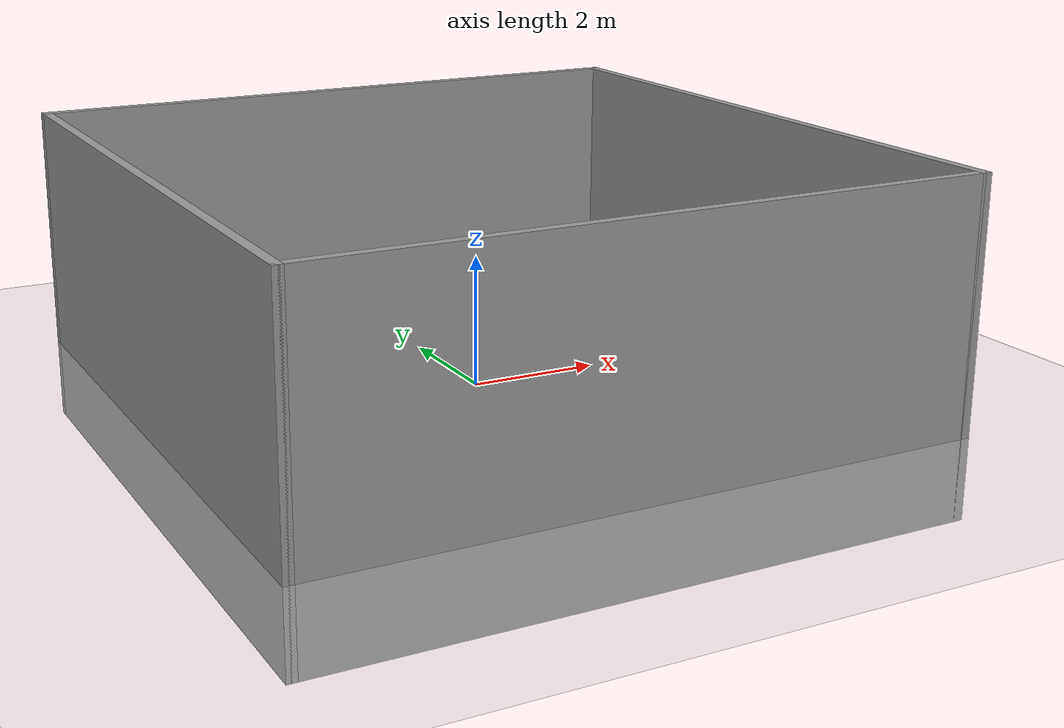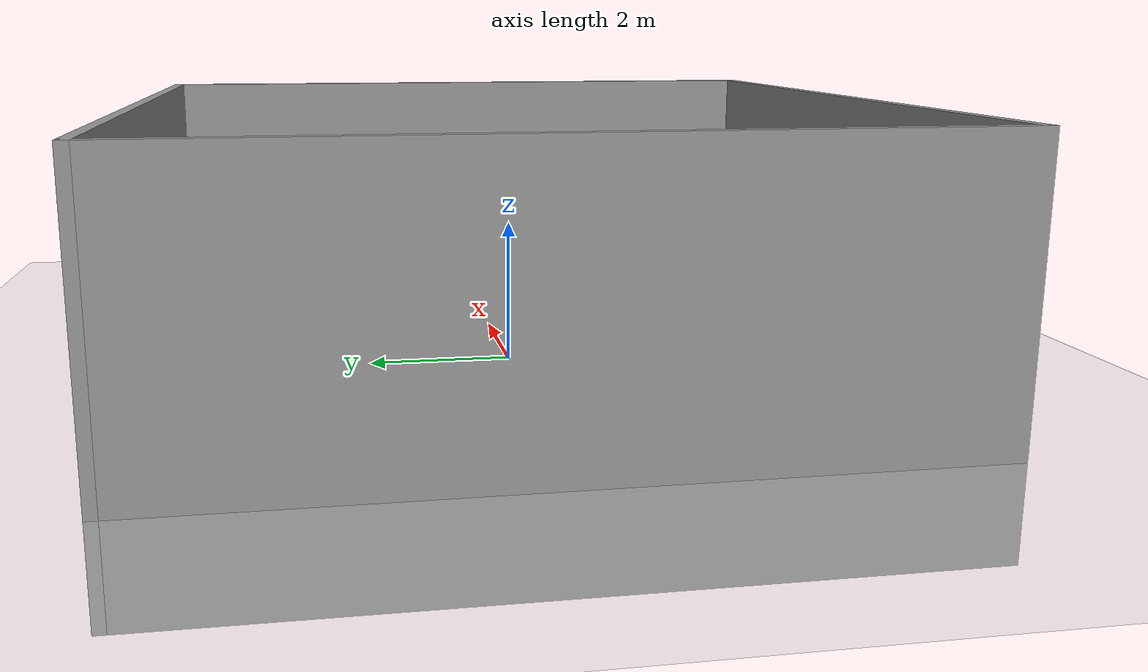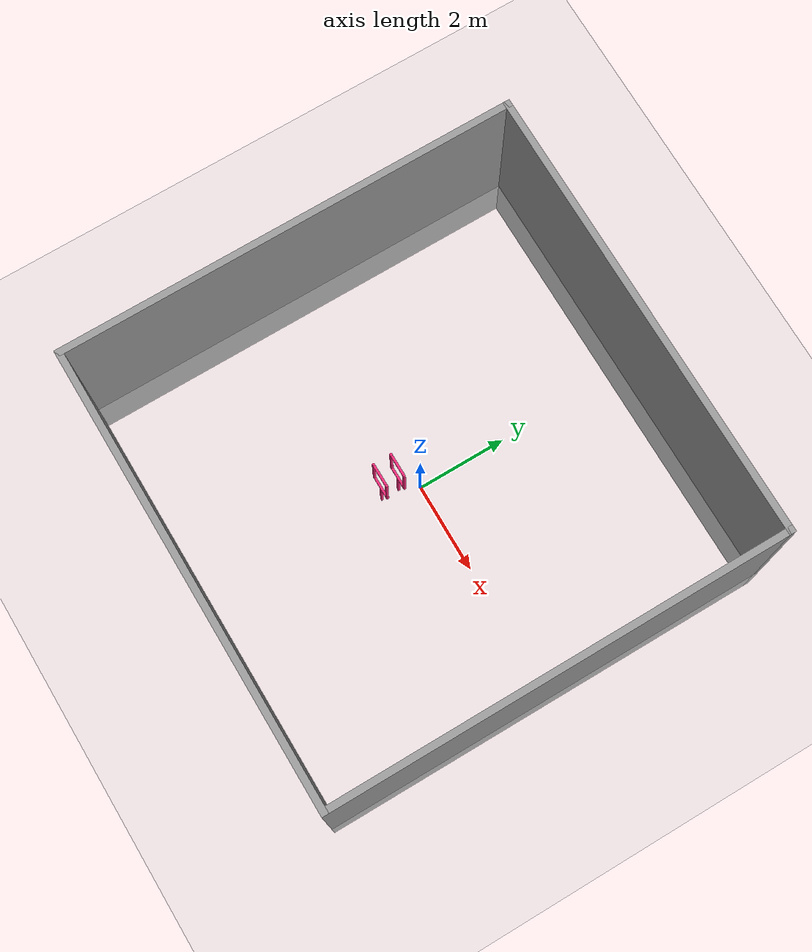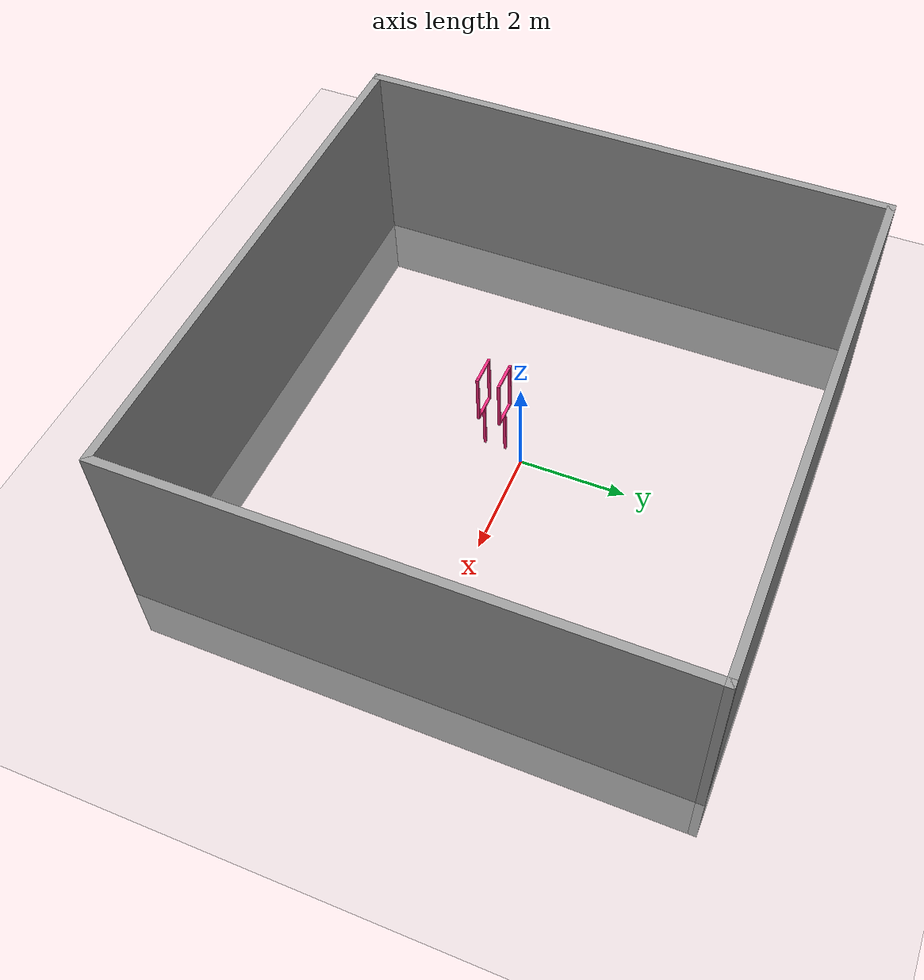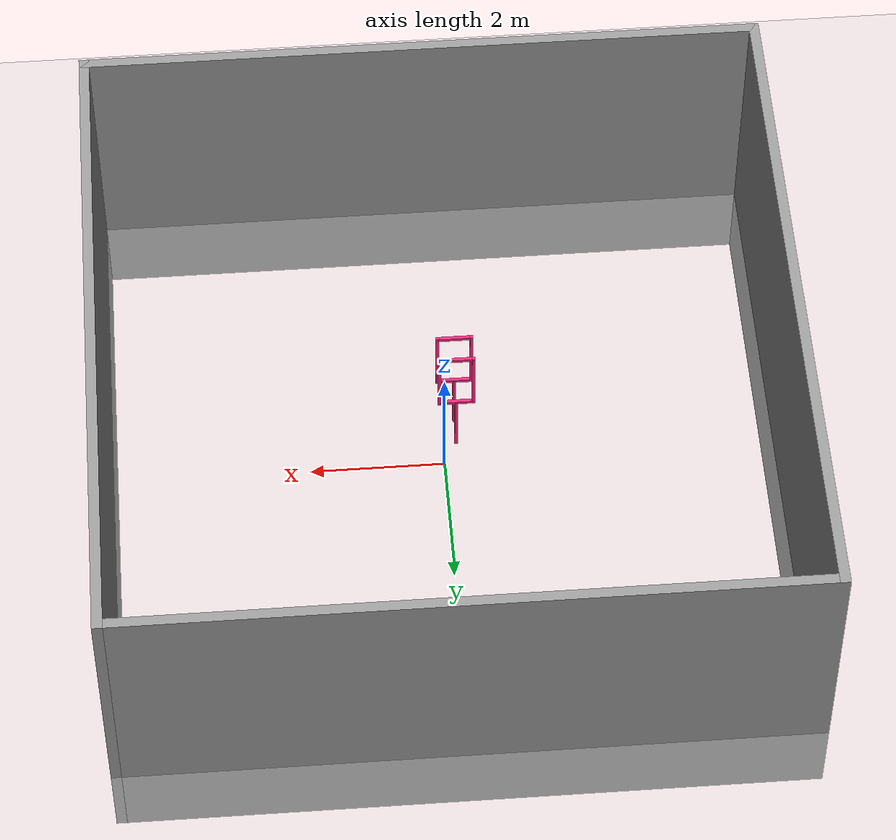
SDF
<sdf version="1.7">
 <world name="default">
  <model name="ground_plane">
   <static>1</static>
   <link name="link">
    <collision name="collision">
     <geometry><plane><normal>0 0 1</normal><size>100 100</size></plane></geometry>
     <surface><friction><ode><mu>100</mu><mu2>50</mu2></ode></friction></surface>
    </collision>
    <visual name="visual">
     <cast_shadows>0</cast_shadows>
     <geometry><plane><normal>0 0 1</normal><size>100 100</size></plane></geometry>
     <material>
      <script><uri>file://media/materials/scripts/gazebo.material</uri><name>Gazebo/Grey</name></script>
     </material>
    </visual>
   </link>
  </model>
  <model name="Indoor_emptyroom">
   <link name="Wall_31">
    <collision name="Wall_31_Collision">
     <geometry><box><size>10.15 0.15 5</size></box></geometry>
     <pose>0 0 1.25 0 -0 0</pose>
    </collision>
    <visual name="Wall_31_Visual">
     <pose>0 0 1.25 0 -0 0</pose>
     <geometry><box><size>10.15 0.15 5</size></box></geometry>
     <material>
      <script><uri>file://media/materials/scripts/gazebo.material</uri><name>Gazebo/Grey</name></script>
      <ambient>1 1 1 1</ambient>
     </material>
     <meta><layer>0</layer></meta>
    </visual>
    <pose>0 -5 0 0 -0 0</pose>
   </link>
   <link name="Wall_32">
    <collision name="Wall_32_Collision">
     <geometry><box><size>10.15 0.15 5</size></box></geometry>
     <pose>0 0 1.25 0 -0 0</pose>
    </collision>
    <visual name="Wall_32_Visual">
     <pose>0 0 1.25 0 -0 0</pose>
     <geometry><box><size>10.15 0.15 5</size></box></geometry>
     <material>
      <script><uri>file://media/materials/scripts/gazebo.material</uri><name>Gazebo/Grey</name></script>
      <ambient>1 1 1 1</ambient>
     </material>
     <meta><layer>0</layer></meta>
    </visual>
    <pose>5 0 0 0 -0 1.5708</pose>
   </link>
   <link name="Wall_33">
    <collision name="Wall_33_Collision">
     <geometry><box><size>10.15 0.15 5</size></box></geometry>
     <pose>0 0 1.25 0 -0 0</pose>
    </collision>
    <visual name="Wall_33_Visual">
     <pose>0 0 1.25 0 -0 0</pose>
     <geometry><box><size>10.15 0.15 5</size></box></geometry>
     <material>
      <script><uri>file://media/materials/scripts/gazebo.material</uri><name>Gazebo/Grey</name></script>
      <ambient>1 1 1 1</ambient>
     </material>
     <meta><layer>0</layer></meta>
    </visual>
    <pose>0 5 0 0 -0 3.14159</pose>
   </link>
   <link name="Wall_34">
    <collision name="Wall_34_Collision">
     <geometry><box><size>10.15 0.15 5</size></box></geometry>
     <pose>0 0 1.25 0 -0 0</pose>
    </collision>
    <visual name="Wall_34_Visual">
     <pose>0 0 1.25 0 -0 0</pose>
     <geometry><box><size>10.15 0.15 5</size></box></geometry>
     <material>
      <script><uri>file://media/materials/scripts/gazebo.material</uri><name>Gazebo/Grey</name></script>
      <ambient>1 1 1 1</ambient>
     </material>
     <meta><layer>0</layer></meta>
    </visual>
    <pose>-5 0 0 0 -0 -1.5708</pose>
   </link>
   <static>1</static>
  </model>
  <model name="small_gate_12">
   <link name="rod">
    <pose>0 0 0.5 0 -0 0</pose>
    <inertial>
     <mass>1</mass>
     <inertia>
      <ixx>0.166667</ixx>
      <ixy>0</ixy>
      <ixz>0</ixz>
      <iyy>0.166667</iyy>
      <iyz>0</iyz>
      <izz>0.166667</izz>
     </inertia>
    </inertial>
    <visual name="visual">
     <geometry><box><size>0.05 0.05 1</size></box></geometry>
     <material>
      <shader type="vertex"><normal_map>__default__</normal_map></shader>
      <ambient>0.978 0.164 0.484 1</ambient>
      <diffuse>0.978 0.164 0.484 1</diffuse>
      <specular>0.01 0.01 0.01 1</specular>
      <emissive>0 0 0 1</emissive>
     </material>
    </visual>
    <collision name="collision">
     <geometry><box><size>0.05 0.05 1</size></box></geometry>
     <surface>
      <friction>
       <ode><mu>1</mu><mu2>1</mu2><fdir1>0 0 0</fdir1><slip1>0</slip1><slip2>0</slip2></ode>
       <torsional>
        <coefficient>1</coefficient>
        <patch_radius>0</patch_radius>
        <surface_radius>0</surface_radius>
        <use_patch_radius>1</use_patch_radius>
        <ode><slip>0</slip></ode>
       </torsional>
      </friction>
      <bounce><restitution_coefficient>0</restitution_coefficient><threshold>1e+06</threshold></bounce>
      <contact>
       <collide_without_contact>0</collide_without_contact>
       <collide_without_contact_bitmask>1</collide_without_contact_bitmask>
       <collide_bitmask>1</collide_bitmask>
       <ode>
        <soft_cfm>0</soft_cfm>
        <soft_erp>0.2</soft_erp>
        <kp>1e+13</kp>
        <kd>1</kd>
        <max_vel>0.01</max_vel>
        <min_depth>0</min_depth>
       </ode>
       <bullet>
        <split_impulse>1</split_impulse>
        <split_impulse_penetration_threshold>-0.01</split_impulse_penetration_threshold>
        <soft_cfm>0</soft_cfm>
        <soft_erp>0.2</soft_erp>
        <kp>1e+13</kp>
        <kd>1</kd>
       </bullet>
      </contact>
     </surface>
    </collision>
   </link>
   <link name="top_edge">
    <pose>0 0 2 0 -0 0</pose>
    <inertial>
     <mass>1</mass>
     <inertia>
      <ixx>0.166667</ixx>
      <ixy>0</ixy>
      <ixz>0</ixz>
      <iyy>0.166667</iyy>
      <iyz>0</iyz>
      <izz>0.166667</izz>
     </inertia>
    </inertial>
    <visual name="visual">
     <geometry><box><size>0.5 0.05 0.05</size></box></geometry>
     <material>
      <shader type="vertex"><normal_map>__default__</normal_map></shader>
      <ambient>0.978 0.164 0.484 1</ambient>
      <diffuse>0.978 0.164 0.484 1</diffuse>
      <specular>0.01 0.01 0.01 1</specular>
      <emissive>0 0 0 1</emissive>
     </material>
    </visual>
    <collision name="collision">
     <geometry><box><size>0.5 0.05 0.05</size></box></geometry>
     <surface>
      <friction>
       <ode><mu>1</mu><mu2>1</mu2><fdir1>0 0 0</fdir1><slip1>0</slip1><slip2>0</slip2></ode>
       <torsional>
        <coefficient>1</coefficient>
        <patch_radius>0</patch_radius>
        <surface_radius>0</surface_radius>
        <use_patch_radius>1</use_patch_radius>
        <ode><slip>0</slip></ode>
       </torsional>
      </friction>
      <bounce><restitution_coefficient>0</restitution_coefficient><threshold>1e+06</threshold></bounce>
      <contact>
       <collide_without_contact>0</collide_without_contact>
       <collide_without_contact_bitmask>1</collide_without_contact_bitmask>
       <collide_bitmask>1</collide_bitmask>
       <ode>
        <soft_cfm>0</soft_cfm>
        <soft_erp>0.2</soft_erp>
        <kp>1e+13</kp>
        <kd>1</kd>
        <max_vel>0.01</max_vel>
        <min_depth>0</min_depth>
       </ode>
       <bullet>
        <split_impulse>1</split_impulse>
        <split_impulse_penetration_threshold>-0.01</split_impulse_penetration_threshold>
        <soft_cfm>0</soft_cfm>
        <soft_erp>0.2</soft_erp>
        <kp>1e+13</kp>
        <kd>1</kd>
       </bullet>
      </contact>
     </surface>
    </collision>
   </link>
   <link name="bottom_edge">
    <pose>0 0 1 0 -0 0</pose>
    <inertial>
     <mass>1</mass>
     <inertia>
      <ixx>0.166667</ixx>
      <ixy>0</ixy>
      <ixz>0</ixz>
      <iyy>0.166667</iyy>
      <iyz>0</iyz>
      <izz>0.166667</izz>
     </inertia>
    </inertial>
    <visual name="visual">
     <geometry><box><size>0.5 0.05 0.05</size></box></geometry>
     <material>
      <shader type="vertex"><normal_map>__default__</normal_map></shader>
      <ambient>0.978 0.164 0.484 1</ambient>
      <diffuse>0.978 0.164 0.484 1</diffuse>
      <specular>0.01 0.01 0.01 1</specular>
      <emissive>0 0 0 1</emissive>
     </material>
    </visual>
    <collision name="collision">
     <geometry><box><size>0.5 0.05 0.05</size></box></geometry>
     <surface>
      <friction>
       <ode><mu>1</mu><mu2>1</mu2><fdir1>0 0 0</fdir1><slip1>0</slip1><slip2>0</slip2></ode>
       <torsional>
        <coefficient>1</coefficient>
        <patch_radius>0</patch_radius>
        <surface_radius>0</surface_radius>
        <use_patch_radius>1</use_patch_radius>
        <ode><slip>0</slip></ode>
       </torsional>
      </friction>
      <bounce><restitution_coefficient>0</restitution_coefficient><threshold>1e+06</threshold></bounce>
      <contact>
       <collide_without_contact>0</collide_without_contact>
       <collide_without_contact_bitmask>1</collide_without_contact_bitmask>
       <collide_bitmask>1</collide_bitmask>
       <ode>
        <soft_cfm>0</soft_cfm>
        <soft_erp>0.2</soft_erp>
        <kp>1e+13</kp>
        <kd>1</kd>
        <max_vel>0.01</max_vel>
        <min_depth>0</min_depth>
       </ode>
       <bullet>
        <split_impulse>1</split_impulse>
        <split_impulse_penetration_threshold>-0.01</split_impulse_penetration_threshold>
        <soft_cfm>0</soft_cfm>
        <soft_erp>0.2</soft_erp>
        <kp>1e+13</kp>
        <kd>1</kd>
       </bullet>
      </contact>
     </surface>
    </collision>
   </link>
   <link name="left_edge">
    <pose>-0.25 0 1.502 0 -0 0</pose>
    <inertial>
     <mass>1</mass>
     <inertia>
      <ixx>0.166667</ixx>
      <ixy>0</ixy>
      <ixz>0</ixz>
      <iyy>0.166667</iyy>
      <iyz>0</iyz>
      <izz>0.166667</izz>
     </inertia>
    </inertial>
    <visual name="visual">
     <geometry><box><size>0.05 0.05 1.05</size></box></geometry>
     <material>
      <shader type="vertex"><normal_map>__default__</normal_map></shader>
      <ambient>0.978 0.164 0.484 1</ambient>
      <diffuse>0.978 0.164 0.484 1</diffuse>
      <specular>0.01 0.01 0.01 1</specular>
      <emissive>0 0 0 1</emissive>
     </material>
    </visual>
    <collision name="collision">
     <geometry><box><size>0.05 0.05 1.05</size></box></geometry>
     <surface>
      <friction>
       <ode><mu>1</mu><mu2>1</mu2><fdir1>0 0 0</fdir1><slip1>0</slip1><slip2>0</slip2></ode>
       <torsional>
        <coefficient>1</coefficient>
        <patch_radius>0</patch_radius>
        <surface_radius>0</surface_radius>
        <use_patch_radius>1</use_patch_radius>
        <ode><slip>0</slip></ode>
       </torsional>
      </friction>
      <bounce><restitution_coefficient>0</restitution_coefficient><threshold>1e+06</threshold></bounce>
      <contact>
       <collide_without_contact>0</collide_without_contact>
       <collide_without_contact_bitmask>1</collide_without_contact_bitmask>
       <collide_bitmask>1</collide_bitmask>
       <ode>
        <soft_cfm>0</soft_cfm>
        <soft_erp>0.2</soft_erp>
        <kp>1e+13</kp>
        <kd>1</kd>
        <max_vel>0.01</max_vel>
        <min_depth>0</min_depth>
       </ode>
       <bullet>
        <split_impulse>1</split_impulse>
        <split_impulse_penetration_threshold>-0.01</split_impulse_penetration_threshold>
        <soft_cfm>0</soft_cfm>
        <soft_erp>0.2</soft_erp>
        <kp>1e+13</kp>
        <kd>1</kd>
       </bullet>
      </contact>
     </surface>
    </collision>
   </link>
   <link name="right_edge">
    <pose>0.25 0 1.502 0 -0 0</pose>
    <inertial>
     <mass>1</mass>
     <inertia>
      <ixx>0.166667</ixx>
      <ixy>0</ixy>
      <ixz>0</ixz>
      <iyy>0.166667</iyy>
      <iyz>0</iyz>
      <izz>0.166667</izz>
     </inertia>
    </inertial>
    <visual name="visual">
     <geometry><box><size>0.05 0.05 1.05</size></box></geometry>
     <material>
      <shader type="vertex"><normal_map>__default__</normal_map></shader>
      <ambient>0.978 0.164 0.484 1</ambient>
      <diffuse>0.978 0.164 0.484 1</diffuse>
      <specular>0.01 0.01 0.01 1</specular>
      <emissive>0 0 0 1</emissive>
     </material>
    </visual>
    <collision name="collision">
     <geometry><box><size>0.05 0.05 1.05</size></box></geometry>
     <surface>
      <friction>
       <ode><mu>1</mu><mu2>1</mu2><fdir1>0 0 0</fdir1><slip1>0</slip1><slip2>0</slip2></ode>
       <torsional>
        <coefficient>1</coefficient>
        <patch_radius>0</patch_radius>
        <surface_radius>0</surface_radius>
        <use_patch_radius>1</use_patch_radius>
        <ode><slip>0</slip></ode>
       </torsional>
      </friction>
      <bounce><restitution_coefficient>0</restitution_coefficient><threshold>1e+06</threshold></bounce>
      <contact>
       <collide_without_contact>0</collide_without_contact>
       <collide_without_contact_bitmask>1</collide_without_contact_bitmask>
       <collide_bitmask>1</collide_bitmask>
       <ode>
        <soft_cfm>0</soft_cfm>
        <soft_erp>0.2</soft_erp>
        <kp>1e+13</kp>
        <kd>1</kd>
        <max_vel>0.01</max_vel>
        <min_depth>0</min_depth>
       </ode>
       <bullet>
        <split_impulse>1</split_impulse>
        <split_impulse_penetration_threshold>-0.01</split_impulse_penetration_threshold>
        <soft_cfm>0</soft_cfm>
        <soft_erp>0.2</soft_erp>
        <kp>1e+13</kp>
        <kd>1</kd>
       </bullet>
      </contact>
     </surface>
    </collision>
   </link>
   <static>1</static>
   <pose>-0.2 -0.8 0 0 -0 0</pose>
  </model>
  <model name="small_gate_13">
   <link name="rod">
    <pose>0 0 0.5 0 -0 0</pose>
    <inertial>
     <mass>1</mass>
     <inertia>
      <ixx>0.166667</ixx>
      <ixy>0</ixy>
      <ixz>0</ixz>
      <iyy>0.166667</iyy>
      <iyz>0</iyz>
      <izz>0.166667</izz>
     </inertia>
    </inertial>
    <visual name="visual">
     <geometry><box><size>0.05 0.05 1</size></box></geometry>
     <material>
      <shader type="vertex"><normal_map>__default__</normal_map></shader>
      <ambient>0.978 0.164 0.484 1</ambient>
      <diffuse>0.978 0.164 0.484 1</diffuse>
      <specular>0.01 0.01 0.01 1</specular>
      <emissive>0 0 0 1</emissive>
     </material>
    </visual>
    <collision name="collision">
     <geometry><box><size>0.05 0.05 1</size></box></geometry>
     <surface>
      <friction>
       <ode><mu>1</mu><mu2>1</mu2><fdir1>0 0 0</fdir1><slip1>0</slip1><slip2>0</slip2></ode>
       <torsional>
        <coefficient>1</coefficient>
        <patch_radius>0</patch_radius>
        <surface_radius>0</surface_radius>
        <use_patch_radius>1</use_patch_radius>
        <ode><slip>0</slip></ode>
       </torsional>
      </friction>
      <bounce><restitution_coefficient>0</restitution_coefficient><threshold>1e+06</threshold></bounce>
      <contact>
       <collide_without_contact>0</collide_without_contact>
       <collide_without_contact_bitmask>1</collide_without_contact_bitmask>
       <collide_bitmask>1</collide_bitmask>
       <ode>
        <soft_cfm>0</soft_cfm>
        <soft_erp>0.2</soft_erp>
        <kp>1e+13</kp>
        <kd>1</kd>
        <max_vel>0.01</max_vel>
        <min_depth>0</min_depth>
       </ode>
       <bullet>
        <split_impulse>1</split_impulse>
        <split_impulse_penetration_threshold>-0.01</split_impulse_penetration_threshold>
        <soft_cfm>0</soft_cfm>
        <soft_erp>0.2</soft_erp>
        <kp>1e+13</kp>
        <kd>1</kd>
       </bullet>
      </contact>
     </surface>
    </collision>
   </link>
   <link name="top_edge">
    <pose>0 0 2 0 -0 0</pose>
    <inertial>
     <mass>1</mass>
     <inertia>
      <ixx>0.166667</ixx>
      <ixy>0</ixy>
      <ixz>0</ixz>
      <iyy>0.166667</iyy>
      <iyz>0</iyz>
      <izz>0.166667</izz>
     </inertia>
    </inertial>
    <visual name="visual">
     <geometry><box><size>0.5 0.05 0.05</size></box></geometry>
     <material>
      <shader type="vertex"><normal_map>__default__</normal_map></shader>
      <ambient>0.978 0.164 0.484 1</ambient>
      <diffuse>0.978 0.164 0.484 1</diffuse>
      <specular>0.01 0.01 0.01 1</specular>
      <emissive>0 0 0 1</emissive>
     </material>
    </visual>
    <collision name="collision">
     <geometry><box><size>0.5 0.05 0.05</size></box></geometry>
     <surface>
      <friction>
       <ode><mu>1</mu><mu2>1</mu2><fdir1>0 0 0</fdir1><slip1>0</slip1><slip2>0</slip2></ode>
       <torsional>
        <coefficient>1</coefficient>
        <patch_radius>0</patch_radius>
        <surface_radius>0</surface_radius>
        <use_patch_radius>1</use_patch_radius>
        <ode><slip>0</slip></ode>
       </torsional>
      </friction>
      <bounce><restitution_coefficient>0</restitution_coefficient><threshold>1e+06</threshold></bounce>
      <contact>
       <collide_without_contact>0</collide_without_contact>
       <collide_without_contact_bitmask>1</collide_without_contact_bitmask>
       <collide_bitmask>1</collide_bitmask>
       <ode>
        <soft_cfm>0</soft_cfm>
        <soft_erp>0.2</soft_erp>
        <kp>1e+13</kp>
        <kd>1</kd>
        <max_vel>0.01</max_vel>
        <min_depth>0</min_depth>
       </ode>
       <bullet>
        <split_impulse>1</split_impulse>
        <split_impulse_penetration_threshold>-0.01</split_impulse_penetration_threshold>
        <soft_cfm>0</soft_cfm>
        <soft_erp>0.2</soft_erp>
        <kp>1e+13</kp>
        <kd>1</kd>
       </bullet>
      </contact>
     </surface>
    </collision>
   </link>
   <link name="bottom_edge">
    <pose>0 0 1 0 -0 0</pose>
    <inertial>
     <mass>1</mass>
     <inertia>
      <ixx>0.166667</ixx>
      <ixy>0</ixy>
      <ixz>0</ixz>
      <iyy>0.166667</iyy>
      <iyz>0</iyz>
      <izz>0.166667</izz>
     </inertia>
    </inertial>
    <visual name="visual">
     <geometry><box><size>0.5 0.05 0.05</size></box></geometry>
     <material>
      <shader type="vertex"><normal_map>__default__</normal_map></shader>
      <ambient>0.978 0.164 0.484 1</ambient>
      <diffuse>0.978 0.164 0.484 1</diffuse>
      <specular>0.01 0.01 0.01 1</specular>
      <emissive>0 0 0 1</emissive>
     </material>
    </visual>
    <collision name="collision">
     <geometry><box><size>0.5 0.05 0.05</size></box></geometry>
     <surface>
      <friction>
       <ode><mu>1</mu><mu2>1</mu2><fdir1>0 0 0</fdir1><slip1>0</slip1><slip2>0</slip2></ode>
       <torsional>
        <coefficient>1</coefficient>
        <patch_radius>0</patch_radius>
        <surface_radius>0</surface_radius>
        <use_patch_radius>1</use_patch_radius>
        <ode><slip>0</slip></ode>
       </torsional>
      </friction>
      <bounce><restitution_coefficient>0</restitution_coefficient><threshold>1e+06</threshold></bounce>
      <contact>
       <collide_without_contact>0</collide_without_contact>
       <collide_without_contact_bitmask>1</collide_without_contact_bitmask>
       <collide_bitmask>1</collide_bitmask>
       <ode>
        <soft_cfm>0</soft_cfm>
        <soft_erp>0.2</soft_erp>
        <kp>1e+13</kp>
        <kd>1</kd>
        <max_vel>0.01</max_vel>
        <min_depth>0</min_depth>
       </ode>
       <bullet>
        <split_impulse>1</split_impulse>
        <split_impulse_penetration_threshold>-0.01</split_impulse_penetration_threshold>
        <soft_cfm>0</soft_cfm>
        <soft_erp>0.2</soft_erp>
        <kp>1e+13</kp>
        <kd>1</kd>
       </bullet>
      </contact>
     </surface>
    </collision>
   </link>
   <link name="left_edge">
    <pose>-0.25 0 1.502 0 -0 0</pose>
    <inertial>
     <mass>1</mass>
     <inertia>
      <ixx>0.166667</ixx>
      <ixy>0</ixy>
      <ixz>0</ixz>
      <iyy>0.166667</iyy>
      <iyz>0</iyz>
      <izz>0.166667</izz>
     </inertia>
    </inertial>
    <visual name="visual">
     <geometry><box><size>0.05 0.05 1.05</size></box></geometry>
     <material>
      <shader type="vertex"><normal_map>__default__</normal_map></shader>
      <ambient>0.978 0.164 0.484 1</ambient>
      <diffuse>0.978 0.164 0.484 1</diffuse>
      <specular>0.01 0.01 0.01 1</specular>
      <emissive>0 0 0 1</emissive>
     </material>
    </visual>
    <collision name="collision">
     <geometry><box><size>0.05 0.05 1.05</size></box></geometry>
     <surface>
      <friction>
       <ode><mu>1</mu><mu2>1</mu2><fdir1>0 0 0</fdir1><slip1>0</slip1><slip2>0</slip2></ode>
       <torsional>
        <coefficient>1</coefficient>
        <patch_radius>0</patch_radius>
        <surface_radius>0</surface_radius>
        <use_patch_radius>1</use_patch_radius>
        <ode><slip>0</slip></ode>
       </torsional>
      </friction>
      <bounce><restitution_coefficient>0</restitution_coefficient><threshold>1e+06</threshold></bounce>
      <contact>
       <collide_without_contact>0</collide_without_contact>
       <collide_without_contact_bitmask>1</collide_without_contact_bitmask>
       <collide_bitmask>1</collide_bitmask>
       <ode>
        <soft_cfm>0</soft_cfm>
        <soft_erp>0.2</soft_erp>
        <kp>1e+13</kp>
        <kd>1</kd>
        <max_vel>0.01</max_vel>
        <min_depth>0</min_depth>
       </ode>
       <bullet>
        <split_impulse>1</split_impulse>
        <split_impulse_penetration_threshold>-0.01</split_impulse_penetration_threshold>
        <soft_cfm>0</soft_cfm>
        <soft_erp>0.2</soft_erp>
        <kp>1e+13</kp>
        <kd>1</kd>
       </bullet>
      </contact>
     </surface>
    </collision>
   </link>
   <link name="right_edge">
    <pose>0.25 0 1.502 0 -0 0</pose>
    <inertial>
     <mass>1</mass>
     <inertia>
      <ixx>0.166667</ixx>
      <ixy>0</ixy>
      <ixz>0</ixz>
      <iyy>0.166667</iyy>
      <iyz>0</iyz>
      <izz>0.166667</izz>
     </inertia>
    </inertial>
    <visual name="visual">
     <geometry><box><size>0.05 0.05 1.05</size></box></geometry>
     <material>
      <shader type="vertex"><normal_map>__default__</normal_map></shader>
      <ambient>0.978 0.164 0.484 1</ambient>
      <diffuse>0.978 0.164 0.484 1</diffuse>
      <specular>0.01 0.01 0.01 1</specular>
      <emissive>0 0 0 1</emissive>
     </material>
    </visual>
    <collision name="collision">
     <geometry><box><size>0.05 0.05 1.05</size></box></geometry>
     <surface>
      <friction>
       <ode><mu>1</mu><mu2>1</mu2><fdir1>0 0 0</fdir1><slip1>0</slip1><slip2>0</slip2></ode>
       <torsional>
        <coefficient>1</coefficient>
        <patch_radius>0</patch_radius>
        <surface_radius>0</surface_radius>
        <use_patch_radius>1</use_patch_radius>
        <ode><slip>0</slip></ode>
       </torsional>
      </friction>
      <bounce><restitution_coefficient>0</restitution_coefficient><threshold>1e+06</threshold></bounce>
      <contact>
       <collide_without_contact>0</collide_without_contact>
       <collide_without_contact_bitmask>1</collide_without_contact_bitmask>
       <collide_bitmask>1</collide_bitmask>
       <ode>
        <soft_cfm>0</soft_cfm>
        <soft_erp>0.2</soft_erp>
        <kp>1e+13</kp>
        <kd>1</kd>
        <max_vel>0.01</max_vel>
        <min_depth>0</min_depth>
       </ode>
       <bullet>
        <split_impulse>1</split_impulse>
        <split_impulse_penetration_threshold>-0.01</split_impulse_penetration_threshold>
        <soft_cfm>0</soft_cfm>
        <soft_erp>0.2</soft_erp>
        <kp>1e+13</kp>
        <kd>1</kd>
       </bullet>
      </contact>
     </surface>
    </collision>
   </link>
   <static>1</static>
   <pose>-0.2 -0.4 0 0 -0 0</pose>
  </model>
 </world>
</sdf>
